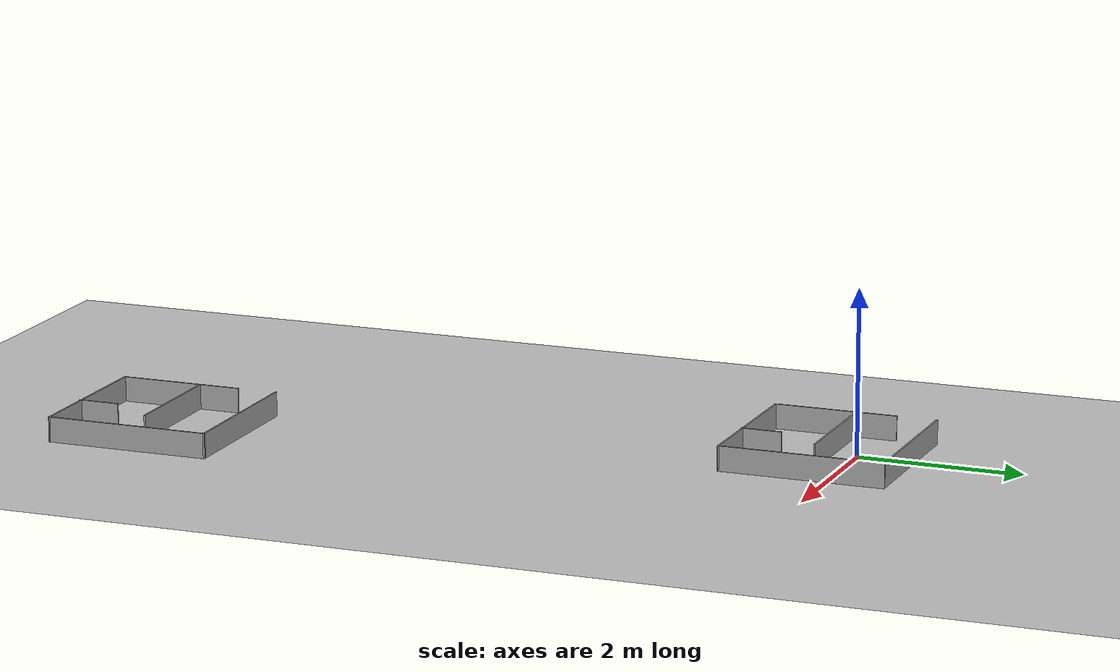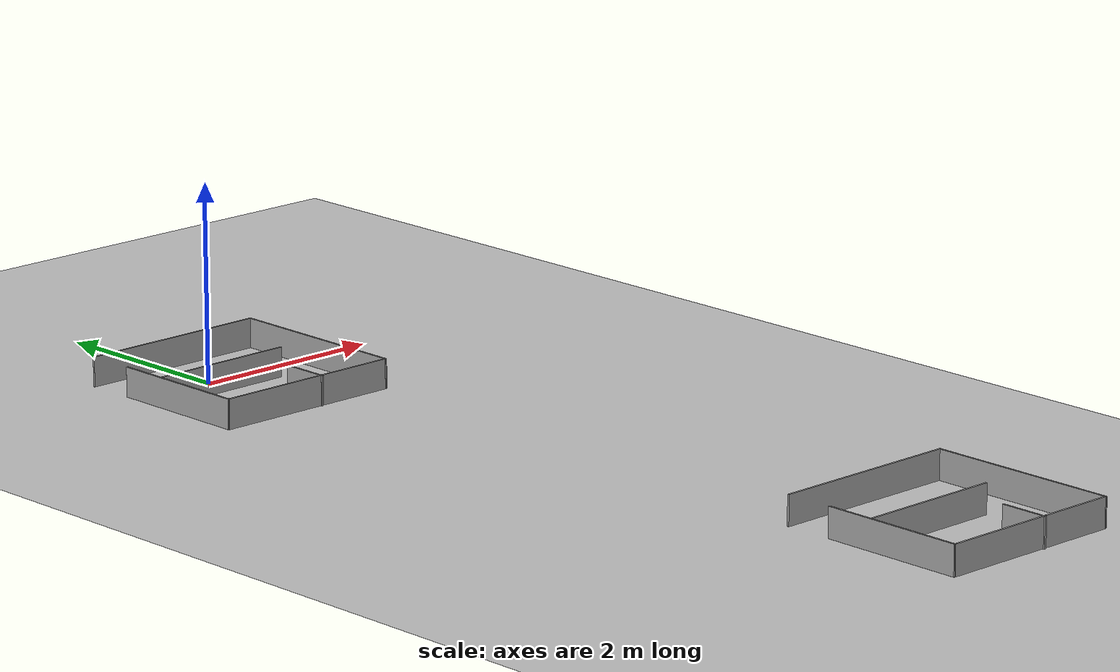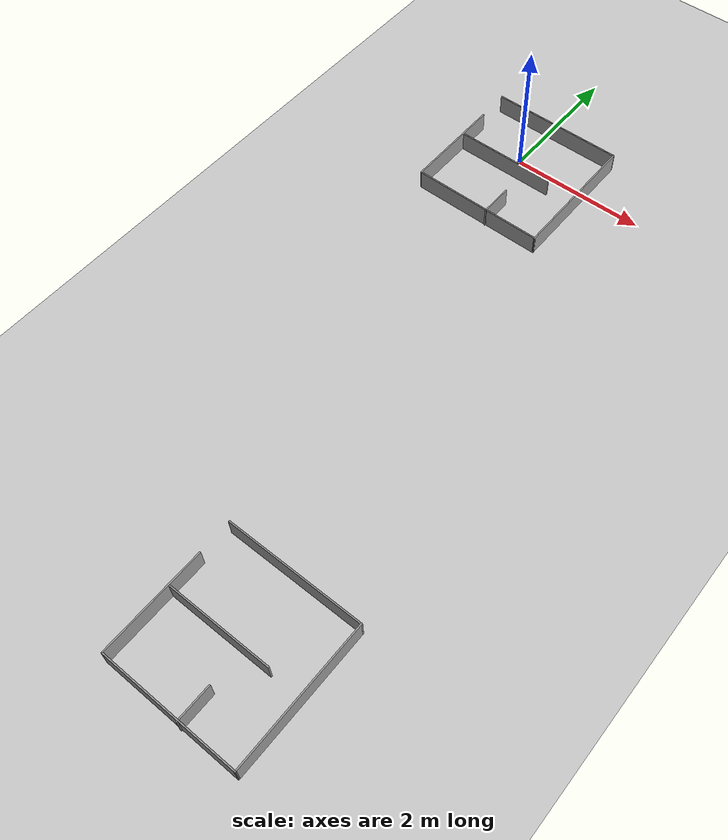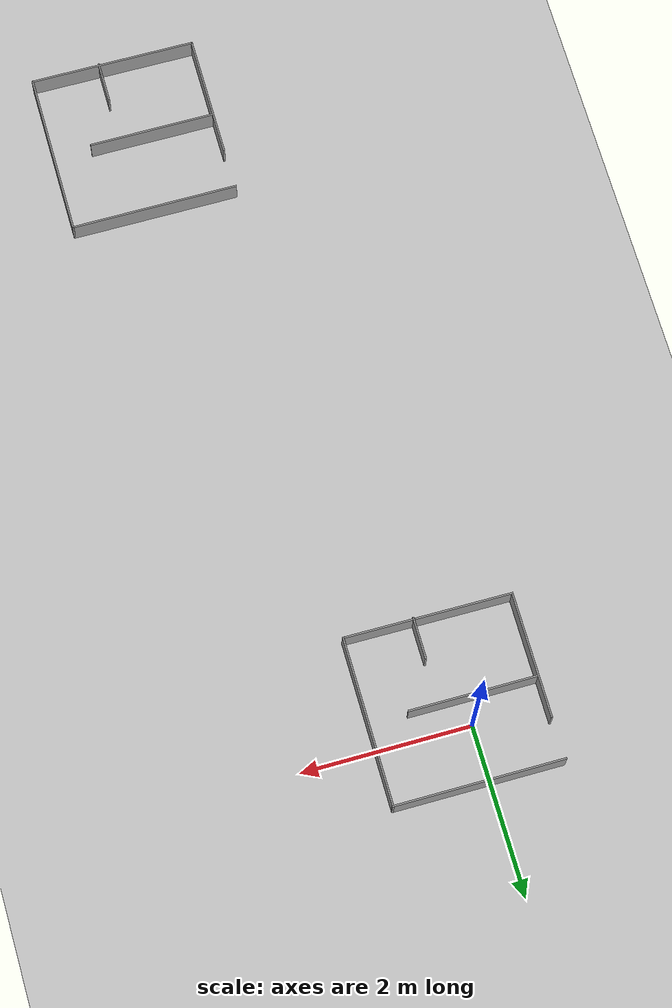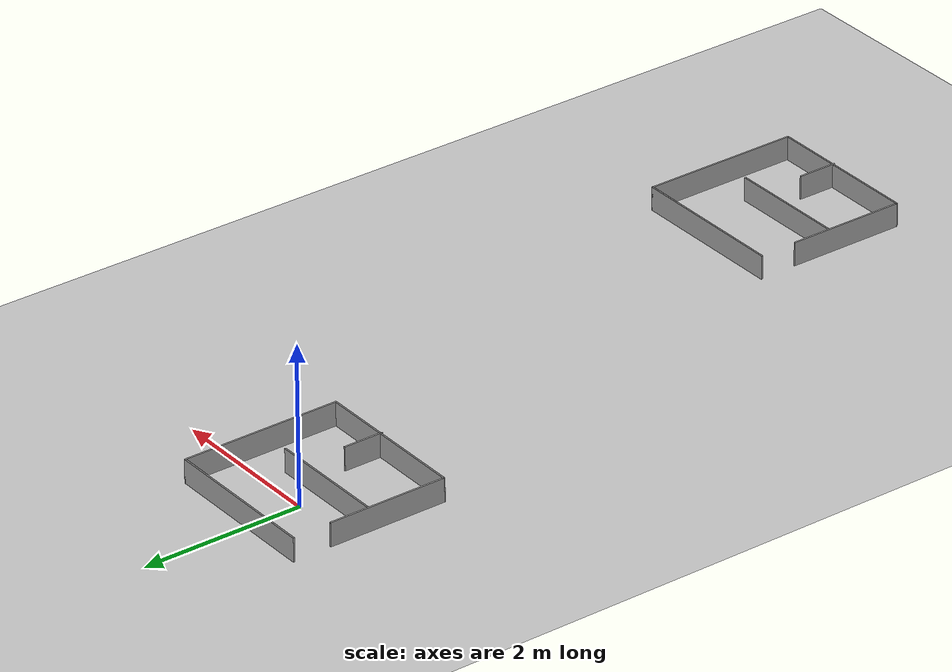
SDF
<sdf version="1.7">
 <world name="default">
  <light name="sun" type="directional">
   <pose>0 0 10 0 -0 0</pose>
   <diffuse>0.8 0.8 0.8 1</diffuse>
   <specular>0.2 0.2 0.2 1</specular>
   <attenuation>
    <range>1000</range>
    <constant>0.9</constant>
    <linear>0.01</linear>
    <quadratic>0.001</quadratic>
   </attenuation>
   <direction>-0.5 0.1 -0.9</direction>
   <spot><inner_angle>0</inner_angle><outer_angle>0</outer_angle><falloff>0</falloff></spot>
  </light>
  <model name="ground_plane">
   <static>1</static>
   <link name="link">
    <collision name="collision">
     <geometry><plane><normal>0 0 1</normal><size>100 100</size></plane></geometry>
     <surface>
      <contact><collide_bitmask>65535</collide_bitmask></contact>
      <friction><ode><mu>100</mu><mu2>50</mu2></ode></friction>
     </surface>
    </collision>
    <visual name="visual">
     <cast_shadows>0</cast_shadows>
     <geometry><plane><normal>0 0 1</normal><size>100 100</size></plane></geometry>
     <material>
      <script><uri>file://media/materials/scripts/gazebo.material</uri><name>Gazebo/Grey</name></script>
     </material>
    </visual>
   </link>
  </model>
  <gravity>0 0 -9.8</gravity>
  <magnetic_field>6e-06 2.3e-05 -4.2e-05</magnetic_field>
  <atmosphere type="adiabatic"/>
  <physics type="ode">
   <max_step_size>0.001</max_step_size>
   <real_time_factor>1</real_time_factor>
   <real_time_update_rate>1000</real_time_update_rate>
  </physics>
  <scene><ambient>0.4 0.4 0.4 1</ambient><background>0.7 0.7 0.7 1</background><shadows>1</shadows></scene>
  <spherical_coordinates>
   <surface_model>EARTH_WGS84</surface_model>
   <latitude_deg>0</latitude_deg>
   <longitude_deg>0</longitude_deg>
   <elevation>0</elevation>
   <heading_deg>0</heading_deg>
  </spherical_coordinates>
  <model name="maze">
   <pose>1.41003 -4.48 0 0 -0 0</pose>
   <link name="Wall_0">
    <collision name="Wall_0_Collision">
     <geometry><box><size>2 0.02 0.3</size></box></geometry>
     <pose>0 0 0.15 0 -0 0</pose>
    </collision>
    <visual name="Wall_0_Visual">
     <pose>0 0 0.15 0 -0 0</pose>
     <geometry><box><size>2 0.02 0.3</size></box></geometry>
     <material>
      <script><uri>file://media/materials/scripts/gazebo.material</uri><name>Gazebo/Grey</name></script>
      <ambient>1 1 1 1</ambient>
     </material>
     <meta><layer>0</layer></meta>
    </visual>
    <pose>0.409975 -2.48 0 0 -0 0</pose>
   </link>
   <link name="Wall_13">
    <collision name="Wall_13_Collision">
     <geometry><box><size>1.99002 0.02 0.3</size></box></geometry>
     <pose>0 0 0.15 0 -0 0</pose>
    </collision>
    <visual name="Wall_13_Visual">
     <pose>0 0 0.15 0 -0 0</pose>
     <geometry><box><size>1.99002 0.02 0.3</size></box></geometry>
     <material>
      <script><uri>file://media/materials/scripts/gazebo.material</uri><name>Gazebo/Grey</name></script>
      <ambient>1 1 1 1</ambient>
     </material>
     <meta><layer>0</layer></meta>
    </visual>
    <pose>0.414975 -4.455 0 0 -0 3.13652</pose>
   </link>
   <link name="Wall_15">
    <collision name="Wall_15_Collision">
     <geometry><box><size>1.5 0.02 0.3</size></box></geometry>
     <pose>0 0 0.15 0 -0 0</pose>
    </collision>
    <visual name="Wall_15_Visual">
     <pose>0 0 0.15 0 -0 0</pose>
     <geometry><box><size>1.5 0.02 0.3</size></box></geometry>
     <material>
      <script><uri>file://media/materials/scripts/gazebo.material</uri><name>Gazebo/Grey</name></script>
      <ambient>1 1 1 1</ambient>
     </material>
     <meta><layer>0</layer></meta>
    </visual>
    <pose>-0.570025 -3.71 0 0 -0 1.5708</pose>
   </link>
   <link name="Wall_18">
    <collision name="Wall_18_Collision">
     <geometry><box><size>1.5 0.02 0.3</size></box></geometry>
     <pose>0 0 0.15 0 -0 0</pose>
    </collision>
    <visual name="Wall_18_Visual">
     <pose>0 0 0.15 0 -0 0</pose>
     <geometry><box><size>1.5 0.02 0.3</size></box></geometry>
     <material>
      <script><uri>file://media/materials/scripts/gazebo.material</uri><name>Gazebo/Grey</name></script>
      <ambient>1 1 1 1</ambient>
     </material>
     <meta><layer>0</layer></meta>
    </visual>
    <pose>0.189975 -3.46 0 0 -0 0</pose>
   </link>
   <link name="Wall_2">
    <collision name="Wall_2_Collision">
     <geometry><box><size>2 0.02 0.3</size></box></geometry>
     <pose>0 0 0.15 0 -0 0</pose>
    </collision>
    <visual name="Wall_2_Visual">
     <pose>0 0 0.15 0 -0 0</pose>
     <geometry><box><size>2 0.02 0.3</size></box></geometry>
     <material>
      <script><uri>file://media/materials/scripts/gazebo.material</uri><name>Gazebo/Grey</name></script>
      <ambient>1 1 1 1</ambient>
     </material>
     <meta><layer>0</layer></meta>
    </visual>
    <pose>1.39997 -3.47 0 0 -0 -1.5708</pose>
   </link>
   <link name="Wall_20">
    <collision name="Wall_20_Collision">
     <geometry><box><size>0.5 0.02 0.3</size></box></geometry>
     <pose>0 0 0.15 0 -0 0</pose>
    </collision>
    <visual name="Wall_20_Visual">
     <pose>0 0 0.15 0 -0 0</pose>
     <geometry><box><size>0.5 0.02 0.3</size></box></geometry>
     <material>
      <script><uri>file://media/materials/scripts/gazebo.material</uri><name>Gazebo/Grey</name></script>
      <ambient>1 1 1 1</ambient>
     </material>
     <meta><layer>0</layer></meta>
    </visual>
    <pose>0.579975 -4.23 0 0 -0 1.5708</pose>
   </link>
   <static>1</static>
  </model>
  <model name="maze_0">
   <pose>-0.26817 3.1664 0 0 -0 0</pose>
   <link name="Wall_0">
    <collision name="Wall_0_Collision">
     <geometry><box><size>2 0.02 0.3</size></box></geometry>
     <pose>0 0 0.15 0 -0 0</pose>
    </collision>
    <visual name="Wall_0_Visual">
     <pose>0 0 0.15 0 -0 0</pose>
     <geometry><box><size>2 0.02 0.3</size></box></geometry>
     <material>
      <script><uri>file://media/materials/scripts/gazebo.material</uri><name>Gazebo/Grey</name></script>
      <ambient>1 1 1 1</ambient>
     </material>
     <meta><layer>0</layer></meta>
    </visual>
    <pose>0.409975 -2.48 0 0 -0 0</pose>
   </link>
   <link name="Wall_13">
    <collision name="Wall_13_Collision">
     <geometry><box><size>1.99002 0.02 0.3</size></box></geometry>
     <pose>0 0 0.15 0 -0 0</pose>
    </collision>
    <visual name="Wall_13_Visual">
     <pose>0 0 0.15 0 -0 0</pose>
     <geometry><box><size>1.99002 0.02 0.3</size></box></geometry>
     <material>
      <script><uri>file://media/materials/scripts/gazebo.material</uri><name>Gazebo/Grey</name></script>
      <ambient>1 1 1 1</ambient>
     </material>
     <meta><layer>0</layer></meta>
    </visual>
    <pose>0.414975 -4.455 0 0 -0 3.13652</pose>
   </link>
   <link name="Wall_15">
    <collision name="Wall_15_Collision">
     <geometry><box><size>1.5 0.02 0.3</size></box></geometry>
     <pose>0 0 0.15 0 -0 0</pose>
    </collision>
    <visual name="Wall_15_Visual">
     <pose>0 0 0.15 0 -0 0</pose>
     <geometry><box><size>1.5 0.02 0.3</size></box></geometry>
     <material>
      <script><uri>file://media/materials/scripts/gazebo.material</uri><name>Gazebo/Grey</name></script>
      <ambient>1 1 1 1</ambient>
     </material>
     <meta><layer>0</layer></meta>
    </visual>
    <pose>-0.570025 -3.71 0 0 -0 1.5708</pose>
   </link>
   <link name="Wall_18">
    <collision name="Wall_18_Collision">
     <geometry><box><size>1.5 0.02 0.3</size></box></geometry>
     <pose>0 0 0.15 0 -0 0</pose>
    </collision>
    <visual name="Wall_18_Visual">
     <pose>0 0 0.15 0 -0 0</pose>
     <geometry><box><size>1.5 0.02 0.3</size></box></geometry>
     <material>
      <script><uri>file://media/materials/scripts/gazebo.material</uri><name>Gazebo/Grey</name></script>
      <ambient>1 1 1 1</ambient>
     </material>
     <meta><layer>0</layer></meta>
    </visual>
    <pose>0.189975 -3.46 0 0 -0 0</pose>
   </link>
   <link name="Wall_2">
    <collision name="Wall_2_Collision">
     <geometry><box><size>2 0.02 0.3</size></box></geometry>
     <pose>0 0 0.15 0 -0 0</pose>
    </collision>
    <visual name="Wall_2_Visual">
     <pose>0 0 0.15 0 -0 0</pose>
     <geometry><box><size>2 0.02 0.3</size></box></geometry>
     <material>
      <script><uri>file://media/materials/scripts/gazebo.material</uri><name>Gazebo/Grey</name></script>
      <ambient>1 1 1 1</ambient>
     </material>
     <meta><layer>0</layer></meta>
    </visual>
    <pose>1.39997 -3.47 0 0 -0 -1.5708</pose>
   </link>
   <link name="Wall_20">
    <collision name="Wall_20_Collision">
     <geometry><box><size>0.5 0.02 0.3</size></box></geometry>
     <pose>0 0 0.15 0 -0 0</pose>
    </collision>
    <visual name="Wall_20_Visual">
     <pose>0 0 0.15 0 -0 0</pose>
     <geometry><box><size>0.5 0.02 0.3</size></box></geometry>
     <material>
      <script><uri>file://media/materials/scripts/gazebo.material</uri><name>Gazebo/Grey</name></script>
      <ambient>1 1 1 1</ambient>
     </material>
     <meta><layer>0</layer></meta>
    </visual>
    <pose>0.579975 -4.23 0 0 -0 1.5708</pose>
   </link>
   <static>1</static>
  </model>
 </world>
</sdf>
